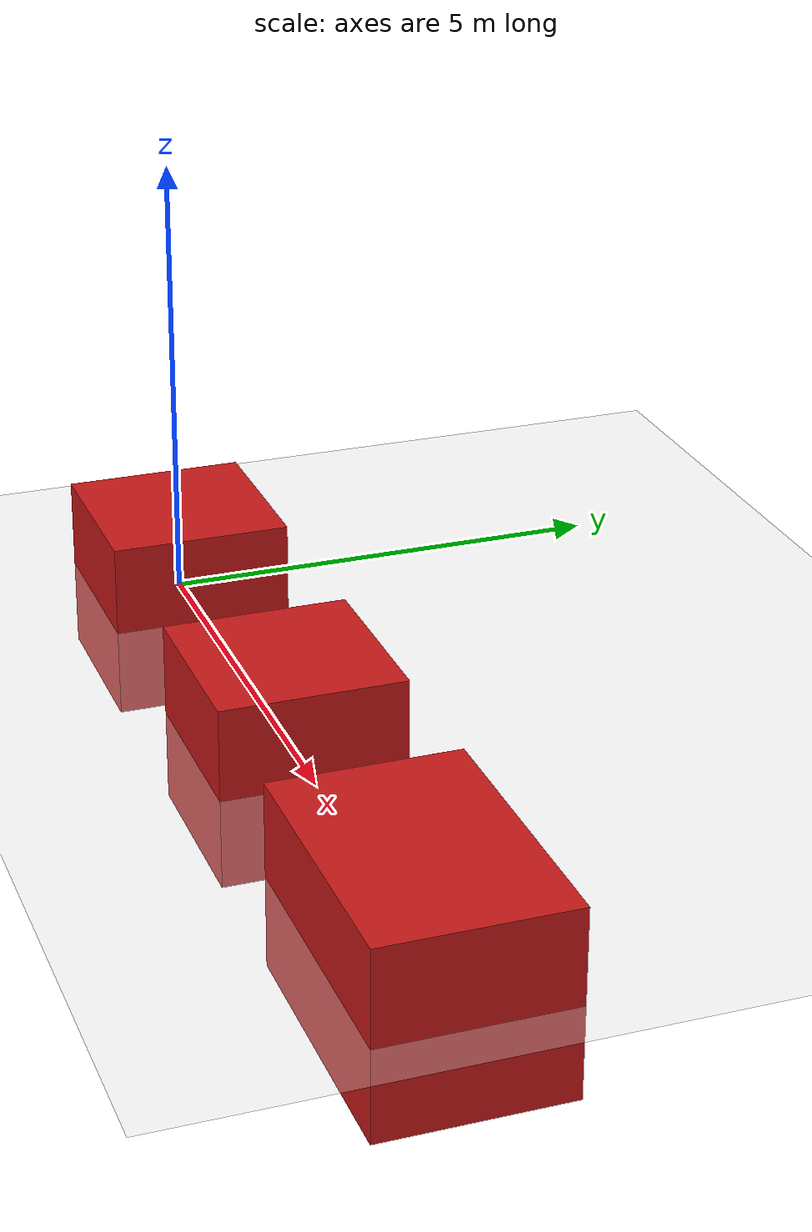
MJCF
<mujoco model="cooking_robot_simulation">
    <worldbody>
        <geom name="floor" type="plane" size="10 15 0.1" pos="0 0 0" rgba="0.9 0.9 0.9 1"/>
        <body name="b1" pos="0 0 0">
            <geom type="box" size="1 1 1" rgba="0.8 0.1 0.1 1"/>
        </body>

        <body name="b2" pos="4 0 0">
            <geom type="box" size="1 1 1" rgba="0.8 0.1 0.1 1"/>
        </body>

        <body name="b3" pos="8 0 0">
            <geom type="box" size="1.5 1 1" rgba="0.8 0.1 0.1 1"/>
        </body>
    </worldbody>
</mujoco>
